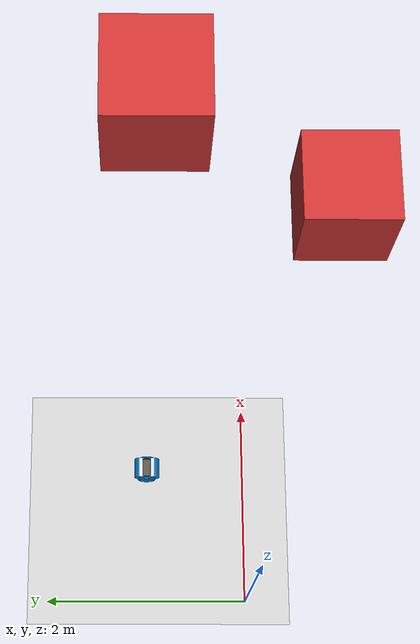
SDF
<?xml version="1.0"?>
<sdf version="1.6">
  <world name="cave_world">
    <physics name="1ms" type="ignored">
      <max_step_size>0.001</max_step_size>
      <real_time_factor>1.0</real_time_factor>
    </physics>

    <plugin filename="libignition-gazebo-physics-system.so" name="ignition::gazebo::systems::Physics"></plugin>
    <plugin filename="libignition-gazebo-user-commands-system.so" name="ignition::gazebo::systems::UserCommands"></plugin>
    <plugin filename="libignition-gazebo-scene-broadcaster-system.so" name="ignition::gazebo::systems::SceneBroadcaster"></plugin>

    <plugin filename="/home/david/workspace/src/ign-gazebo/examples/plugin/system_plugin/build/libAttachableJoint.so" name="attachable_joint::AttachableJoint">
        <detachtopic>/box2/detach</detachtopic>
        <attachtopic>/box2/attach</attachtopic>
    </plugin>

    <!-- FLOOR -->
    <model name="ground_plane">
      <static>true</static>
      <pose>0 0 -0.115015 0 0 0</pose>
      <link name="link">
        <collision name="collision">
          <geometry>
            <plane>
              <normal>0 0 1</normal>
            </plane>
          </geometry>
        </collision>
        <visual name="visual">
          <geometry>
            <plane>
              <normal>0 0 1</normal>
              <size>100 100</size>
            </plane>
          </geometry>
          <material>
            <ambient>0.8 0.8 0.8 1</ambient>
            <diffuse>0.8 0.8 0.8 1</diffuse>
            <specular>0.8 0.8 0.8 1</specular>
          </material>
        </visual>
      </link>
    </model>

    <!-- SUN -->
    <light type="directional" name="sun">
      <cast_shadows>true</cast_shadows>
      <pose>0 0 10 0 0 0</pose>
      <diffuse>0.8 0.8 0.8 1</diffuse>
      <specular>0.2 0.2 0.2 1</specular>
      <attenuation>
        <range>1000</range>
        <constant>0.9</constant>
        <linear>0.01</linear>
        <quadratic>0.001</quadratic>
      </attenuation>
      <direction>-0.5 0.1 -0.9</direction>
    </light>

    <!-- INCLUDE BODY Y PATAS -->
    <model name="mod1">
      <include>
        <pose>0 0 0.45 0 0 0</pose> <!-- Z for mine-->
        <uri>model://rm2_body</uri>
        <name>mod1</name>
      </include>
    </model>

    <model name="box1">
      <pose>1 0 7 0 0 0</pose>
      <link name="box_body">
        <visual name="v1">
          <geometry>
            <box><size>0.5 0.5 0.5</size></box>
          </geometry>
          <material>
            <diffuse>0.8 0.2 0.2 1</diffuse>
            <specular>1.0 0 0 1</specular>
          </material>
        </visual>
        <collision name="c1">
          <geometry>
            <box><size>1 1 1</size></box>
          </geometry>
        </collision>
      </link>
    </model>

    <model name="box2">
      <pose>1 1 8 0 0 0</pose>
      <link name="box_body">
        <visual name="v2">
          <geometry>
            <box><size>0.5 0.5 0.5</size></box>
          </geometry>
          <material>
            <diffuse>0.8 0.2 0.2 1</diffuse>
            <specular>1.0 0 0 1</specular>
          </material>
        </visual>
        <collision name="c2">
          <geometry>
            <box><size>1 1 1</size></box>
          </geometry>
        </collision>
      </link>
    </model>

  </world>
</sdf>

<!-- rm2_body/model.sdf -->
<sdf version="1.7">
  <model name="b">
    <link name='bodyLink'>
      <pose>1 1 1 0 0 0</pose>
      <inertial>
        <mass>1.8</mass>
        <inertia>
          <ixx>2.501</ixx>
          <ixy>0</ixy>
          <ixz>0</ixz>
          <iyy>2.501</iyy>
          <iyz>0</iyz>
          <izz>5</izz>
        </inertia>
      </inertial>
      <collision name='collision'>
        <geometry>
          <mesh>
            <scale> 0.01 0.01 0.01</scale>
            <uri>model://rm2_body/meshes/body_collision.stl</uri>
          </mesh>
        </geometry>
      </collision>
      <visual name='visual'>
        <geometry>
          <mesh>
            <uri>model://rm2_body/meshes/b_simple.dae</uri>
          </mesh>
        </geometry>
      </visual>
    </link>
  </model>
</sdf>
